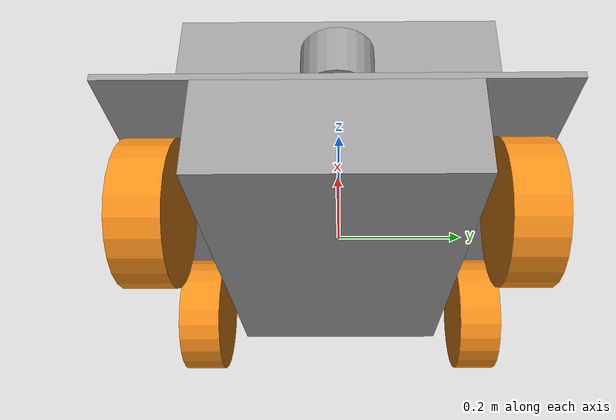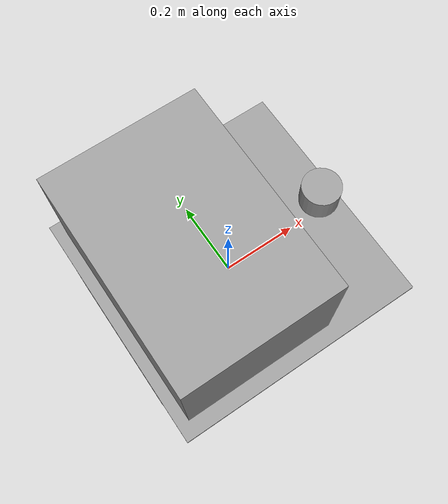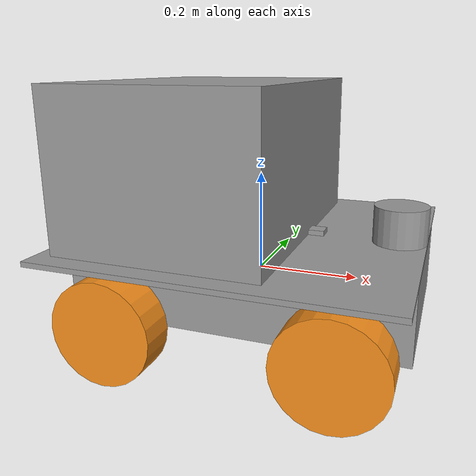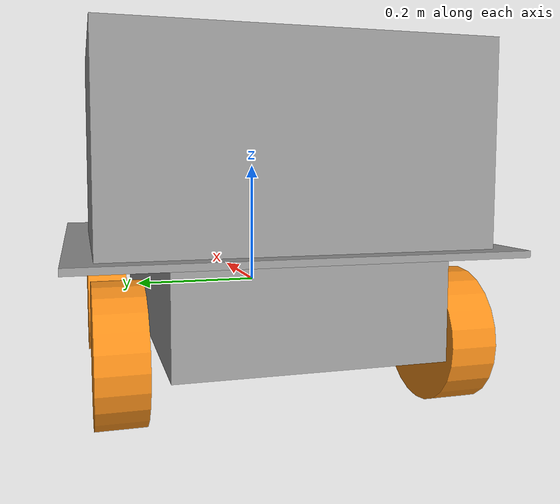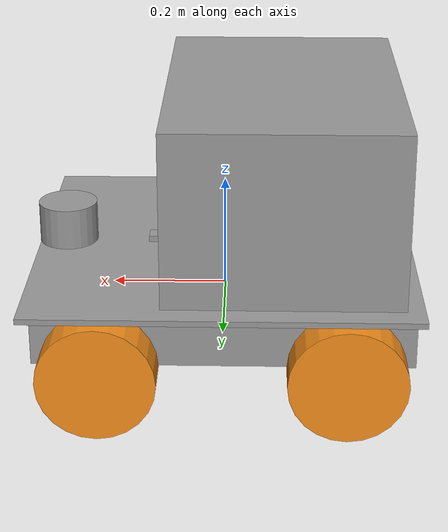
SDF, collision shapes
<?xml version='1.0'?>
<sdf version='1.7'>

  <model name='arco'>

    <link name='base_link'>
      <inertial>
        <mass>20</mass>
        <inertia>
          <ixx>0.273333</ixx>
          <ixy>0</ixy>
          <ixz>0</ixz>
          <iyy>0.758667</iyy>
          <iyz>0</iyz>
          <izz>0.966667</izz>
        </inertia>
        <pose>0 0 0 0 -0 0</pose>
      </inertial>
      <self_collide>1</self_collide>
      <enable_wind>0</enable_wind>
      <kinematic>0</kinematic>
      <pose>0 0 0 0 -0 0</pose>
      <gravity>1</gravity>
      <visual name='visual'>
        <geometry>
          <box>
            <size>0.66 0.38 0.14</size>
          </box>
        </geometry>
        <material>
          <script>
            <name>Gazebo/Grey</name>
            <uri>file://media/materials/scripts/gazebo.material</uri>
          </script>
          <shader type='pixel'>
            <normal_map>__default__</normal_map>
          </shader>
          <ambient>1 1 1 1</ambient>
          <diffuse>0.7 0.7 0.7 1</diffuse>
          <specular>0.01 0.01 0.01 1</specular>
          <emissive>0 0 0 1</emissive>
        </material>
        <pose>0 0 0 0 -0 0</pose>
        <transparency>0</transparency>
        <cast_shadows>1</cast_shadows>
      </visual>
      <collision name='collision'>
        <laser_retro>0</laser_retro>
        <max_contacts>10</max_contacts>
        <pose>0 0 0 0 -0 0</pose>
        <geometry>
          <box>
            <size>0.66 0.38 0.14</size>
          </box>
        </geometry>
        <surface>
          <friction>
            <ode>
              <mu>1</mu>
              <mu2>1</mu2>
              <fdir1>0 0 0</fdir1>
              <slip1>0</slip1>
              <slip2>0</slip2>
            </ode>
            <torsional>
              <coefficient>1</coefficient>
              <patch_radius>0</patch_radius>
              <surface_radius>0</surface_radius>
              <use_patch_radius>1</use_patch_radius>
              <ode>
                <slip>0</slip>
              </ode>
            </torsional>
          </friction>
          <bounce>
            <restitution_coefficient>0</restitution_coefficient>
            <threshold>1e+06</threshold>
          </bounce>
          <contact>
            <collide_without_contact>0</collide_without_contact>
            <collide_without_contact_bitmask>1</collide_without_contact_bitmask>
            <collide_bitmask>1</collide_bitmask>
            <ode>
              <soft_cfm>0</soft_cfm>
              <soft_erp>0.2</soft_erp>
              <kp>1e+13</kp>
              <kd>1</kd>
              <max_vel>0.01</max_vel>
              <min_depth>0</min_depth>
            </ode>
            <bullet>
              <split_impulse>1</split_impulse>
              <split_impulse_penetration_threshold>-0.01</split_impulse_penetration_threshold>
              <soft_cfm>0</soft_cfm>
              <soft_erp>0.2</soft_erp>
              <kp>1e+13</kp>
              <kd>1</kd>
            </bullet>
          </contact>
        </surface>
      </collision>

      <collision name='imu_collision'>
        <pose>0.12 0 0.09 0 -0 0</pose>
        <geometry>
          <box>
            <size>0.031 0.031 0.01</size>
          </box>
        </geometry>
        <surface>
          <contact>
            <ode/>
          </contact>
          <friction>
            <ode/>
          </friction>
        </surface>
      </collision>
      <collision name='os1_sensor_collision'>
        <pose>0.2795 0 0.12 0 -0 0</pose>
        <geometry>
          <cylinder>
            <length>0.0717</length>
            <radius>0.0516</radius>
          </cylinder>
        </geometry>
      </collision>
      <visual name='imu_visual'>
        <pose>0.12 0 0.09 0 -0 0</pose>
        <geometry>
          <mesh>
            <scale>0.001 0.001 0.001</scale>
            <uri>model://arco/meshes/razor_imu/razor_imu.stl</uri>
          </mesh>
        </geometry>
        <material>
          <script>
            <name>Gazebo/Red</name>
            <uri>file://media/materials/scripts/gazebo.material</uri>
          </script>
        </material>
      </visual>
      <visual name='os1_sensor_base_link_1'>
        <pose>0.2795 0 0.08 0 -0 0</pose>
        <geometry>
          <mesh>
            <scale>1 1 1</scale>
            <uri>model://arco/meshes/VLP16/VLP16_base_1.dae</uri>
          </mesh>
        </geometry>
      </visual>
      <visual name='os1_sensor_base_link_visual_2'>
        <pose>0.2795 0 0.08 -0 0</pose>
        <geometry>
          <mesh>
            <scale>1 1 1</scale>
            <uri>model://arco/meshes/VLP16/VLP16_base_2.dae</uri>
          </mesh>
        </geometry>
      </visual>
      <visual name='os1_sensor_visual_3'>
        <pose>0.2795 0 0.08 0 -0 0</pose>
        <geometry>
          <mesh>
            <scale>1 1 1</scale>
            <uri>model://arco/meshes/VLP16/VLP16_scan.dae</uri>
          </mesh>
        </geometry>
      </visual>

      <sensor name='imu_sensor' type='imu'>
        <always_on>1</always_on>
        <update_rate>50</update_rate>
        <visualize>1</visualize>
        <topic>__default_topic__</topic>
        <pose>0.12 0 0.1428 0 -0 0</pose>
      </sensor>
      <sensor name='os1_sensor-VLP16' type='ray'>
        <visualize>0</visualize>
        <update_rate>10</update_rate>
        <ray>
          <scan>
            <horizontal>
              <samples>1875</samples>
              <resolution>1</resolution>
              <min_angle>-3.14159</min_angle>
              <max_angle>3.14159</max_angle>
            </horizontal>
            <vertical>
              <samples>16</samples>
              <resolution>1</resolution>
              <min_angle>-0.261799</min_angle>
              <max_angle>0.261799</max_angle>
            </vertical>
          </scan>
          <range>
            <min>0.3</min>
            <max>40</max>
            <resolution>0.001</resolution>
          </range>
          <noise>
            <type>gaussian</type>
            <mean>0</mean>
            <stddev>0</stddev>
          </noise>
        </ray>
        <pose>0.2795 0 0.1791 0 -0 0</pose>
      </sensor>
    </link>
    <link name='front_right'>
      <inertial>
        <mass>0.5</mass>
        <inertia>
          <ixx>0.00104176</ixx>
          <ixy>0</ixy>
          <ixz>0</ixz>
          <iyy>0.00104176</iyy>
          <iyz>0</iyz>
          <izz>0.001225</izz>
        </inertia>
        <pose>0 0 0 0 -0 0</pose>
      </inertial>
      <pose>0.21 0.247 -0.06 1.57 0 0</pose>
      <gravity>1</gravity>
      <self_collide>1</self_collide>
      <kinematic>0</kinematic>
      <enable_wind>0</enable_wind>
      <visual name='visual'>
        <pose>0 0 0 1.57 -0 0</pose>
        <geometry>
          <mesh>
            <scale>0.002 0.002 0.002</scale>
            <uri>model://arco/meshes/mecanum/mecanum_wheel_left.STL</uri>
          </mesh>
        </geometry>
        <material>
          <lighting>1</lighting>
          <script>
            <name>Gazebo/Orange</name>
            <uri>file://media/materials/scripts/gazebo.material</uri>
          </script>
          <shader type='pixel'>
            <normal_map>__default__</normal_map>
          </shader>
        </material>
        <transparency>0</transparency>
        <cast_shadows>1</cast_shadows>
      </visual>
      <collision name='collision'>
        <laser_retro>0</laser_retro>
        <max_contacts>10</max_contacts>
        <pose>0 0 0 0 -0 0</pose>
        <geometry>
          <cylinder>
            <radius>0.1015</radius>
            <length>0.07</length>
          </cylinder>
        </geometry>
        <surface>
          <friction>
            <ode>
              <mu>1</mu>
              <mu2>1</mu2>
              <fdir1>0 0 0</fdir1>
              <slip1>0</slip1>
              <slip2>0</slip2>
            </ode>
            <torsional>
              <coefficient>1</coefficient>
              <patch_radius>0</patch_radius>
              <surface_radius>0</surface_radius>
              <use_patch_radius>1</use_patch_radius>
              <ode>
                <slip>0</slip>
              </ode>
            </torsional>
          </friction>
          <bounce>
            <restitution_coefficient>0</restitution_coefficient>
            <threshold>1e+06</threshold>
          </bounce>
          <contact>
            <collide_without_contact>0</collide_without_contact>
            <collide_without_contact_bitmask>1</collide_without_contact_bitmask>
            <collide_bitmask>1</collide_bitmask>
            <ode>
              <soft_cfm>0</soft_cfm>
              <soft_erp>0.2</soft_erp>
              <kp>1e+13</kp>
              <kd>1</kd>
              <max_vel>0.01</max_vel>
              <min_depth>0</min_depth>
            </ode>
            <bullet>
              <split_impulse>1</split_impulse>
              <split_impulse_penetration_threshold>-0.01</split_impulse_penetration_threshold>
              <soft_cfm>0</soft_cfm>
              <soft_erp>0.2</soft_erp>
              <kp>1e+13</kp>
              <kd>1</kd>
            </bullet>
          </contact>
        </surface>
      </collision>
    </link>
    <link name='rear_right'>
      <inertial>
        <mass>0.5</mass>
        <inertia>
          <ixx>0.00104176</ixx>
          <ixy>0</ixy>
          <ixz>0</ixz>
          <iyy>0.00104176</iyy>
          <iyz>0</iyz>
          <izz>0.001225</izz>
        </inertia>
        <pose>0 0 0 0 -0 0</pose>
      </inertial>
      <pose>-0.21 0.247 -0.06 1.57 -0 0</pose>
      <gravity>1</gravity>
      <self_collide>1</self_collide>
      <kinematic>0</kinematic>
      <enable_wind>0</enable_wind>
      <visual name='visual'>
        <pose>0 0 0 1.57 -0 0</pose>
        <geometry>
         <mesh>
            <scale>0.002 0.002 0.002</scale>
            <uri>model://arco/meshes/mecanum/mecanum_wheel_left.STL</uri>
          </mesh>
        </geometry>
        <material>
          <lighting>1</lighting>
          <script>
            <name>Gazebo/Orange</name>
            <uri>file://media/materials/scripts/gazebo.material</uri>
          </script>
          <shader type='pixel'>
            <normal_map>__default__</normal_map>
          </shader>
        </material>
        <transparency>0</transparency>
        <cast_shadows>1</cast_shadows>
      </visual>
      <collision name='collision'>
        <laser_retro>0</laser_retro>
        <max_contacts>10</max_contacts>
        <pose>0 0 0 0 -0 0</pose>
        <geometry>
          <cylinder>
            <radius>0.1015</radius>
            <length>0.07</length>
          </cylinder>
        </geometry>
        <surface>
          <friction>
            <ode>
              <mu>1</mu>
              <mu2>1</mu2>
              <fdir1>0 0 0</fdir1>
              <slip1>0</slip1>
              <slip2>0</slip2>
            </ode>
            <torsional>
              <coefficient>1</coefficient>
              <patch_radius>0</patch_radius>
              <surface_radius>0</surface_radius>
              <use_patch_radius>1</use_patch_radius>
              <ode>
                <slip>0</slip>
              </ode>
            </torsional>
          </friction>
          <bounce>
            <restitution_coefficient>0</restitution_coefficient>
            <threshold>1e+06</threshold>
          </bounce>
          <contact>
            <collide_without_contact>0</collide_without_contact>
            <collide_without_contact_bitmask>1</collide_without_contact_bitmask>
            <collide_bitmask>1</collide_bitmask>
            <ode>
              <soft_cfm>0</soft_cfm>
              <soft_erp>0.2</soft_erp>
              <kp>1e+13</kp>
              <kd>1</kd>
              <max_vel>0.01</max_vel>
              <min_depth>0</min_depth>
            </ode>
            <bullet>
              <split_impulse>1</split_impulse>
              <split_impulse_penetration_threshold>-0.01</split_impulse_penetration_threshold>
              <soft_cfm>0</soft_cfm>
              <soft_erp>0.2</soft_erp>
              <kp>1e+13</kp>
              <kd>1</kd>
            </bullet>
          </contact>
        </surface>
      </collision>
    </link>
    <link name='front_left'>
      <inertial>
        <mass>0.5</mass>
        <inertia>
          <ixx>0.00104176</ixx>
          <ixy>0</ixy>
          <ixz>0</ixz>
          <iyy>0.00104176</iyy>
          <iyz>0</iyz>
          <izz>0.001225</izz>
        </inertia>
        <pose>0 0 0 0 -0 0</pose>
      </inertial>
      <pose>0.21 -0.247 -0.06 1.57 -0 0</pose>
      <gravity>1</gravity>
      <self_collide>1</self_collide>
      <kinematic>0</kinematic>
      <enable_wind>0</enable_wind>
      <visual name='visual'>
        <pose>0 0 0 1.57 -0 0</pose>
        <geometry>
          <mesh>
            <scale>0.002 0.002 0.002</scale>
            <uri>model://arco/meshes/mecanum/mecanum_wheel_left.STL</uri>
          </mesh>
        </geometry>
        <material>
          <lighting>1</lighting>
          <script>
            <name>Gazebo/Orange</name>
            <uri>file://media/materials/scripts/gazebo.material</uri>
          </script>
          <shader type='pixel'>
            <normal_map>__default__</normal_map>
          </shader>
        </material>
        <transparency>0</transparency>
        <cast_shadows>1</cast_shadows>
      </visual>
      <collision name='collision'>
        <laser_retro>0</laser_retro>
        <max_contacts>10</max_contacts>
        <pose>0 0 0 0 -0 0</pose>
        <geometry>
          <cylinder>
            <radius>0.1015</radius>
            <length>0.07</length>
          </cylinder>
        </geometry>
        <surface>
          <friction>
            <ode>
              <mu>1</mu>
              <mu2>1</mu2>
              <fdir1>0 0 0</fdir1>
              <slip1>0</slip1>
              <slip2>0</slip2>
            </ode>
            <torsional>
              <coefficient>1</coefficient>
              <patch_radius>0</patch_radius>
              <surface_radius>0</surface_radius>
              <use_patch_radius>1</use_patch_radius>
              <ode>
                <slip>0</slip>
              </ode>
            </torsional>
          </friction>
          <bounce>
            <restitution_coefficient>0</restitution_coefficient>
            <threshold>1e+06</threshold>
          </bounce>
          <contact>
            <collide_without_contact>0</collide_without_contact>
            <collide_without_contact_bitmask>1</collide_without_contact_bitmask>
            <collide_bitmask>1</collide_bitmask>
            <ode>
              <soft_cfm>0</soft_cfm>
              <soft_erp>0.2</soft_erp>
              <kp>1e+13</kp>
              <kd>1</kd>
              <max_vel>0.01</max_vel>
              <min_depth>0</min_depth>
            </ode>
            <bullet>
              <split_impulse>1</split_impulse>
              <split_impulse_penetration_threshold>-0.01</split_impulse_penetration_threshold>
              <soft_cfm>0</soft_cfm>
              <soft_erp>0.2</soft_erp>
              <kp>1e+13</kp>
              <kd>1</kd>
            </bullet>
          </contact>
        </surface>
      </collision>
    </link>
    <link name='rear_left'>
      <inertial>
        <mass>0.5</mass>
        <inertia>
          <ixx>0.00104176</ixx>
          <ixy>0</ixy>
          <ixz>0</ixz>
          <iyy>0.00104176</iyy>
          <iyz>0</iyz>
          <izz>0.001225</izz>
        </inertia>
        <pose>0 0 0 1.57 -0 0</pose>
      </inertial>
      <pose>-0.21 -0.247 -0.06 1.57 -0 0</pose>
      <gravity>1</gravity>
      <self_collide>1</self_collide>
      <kinematic>0</kinematic>
      <enable_wind>0</enable_wind>
      <visual name='visual'>
        <pose>0 0 0 1.57 -0 0</pose>
        <geometry>
          <mesh>
            <scale>0.002 0.002 0.002</scale>
            <uri>model://arco/meshes/mecanum/mecanum_wheel_left.STL</uri>
          </mesh>
        </geometry>
        <material>
          <lighting>1</lighting>
          <script>
            <name>Gazebo/Orange</name>
            <uri>file://media/materials/scripts/gazebo.material</uri>
          </script>
          <shader type='pixel'>
            <normal_map>__default__</normal_map>
          </shader>
        </material>
        <transparency>0</transparency>
        <cast_shadows>1</cast_shadows>
      </visual>
      <collision name='collision'>
        <laser_retro>0</laser_retro>
        <max_contacts>10</max_contacts>
        <pose>0 0 0 0 -0 0</pose>
        <geometry>
          <cylinder>
            <radius>0.1015</radius>
            <length>0.07</length>
          </cylinder>
        </geometry>
        <surface>
          <friction>
            <ode>
              <mu>1</mu>
              <mu2>1</mu2>
              <fdir1>0 0 0</fdir1>
              <slip1>0</slip1>
              <slip2>0</slip2>
            </ode>
            <torsional>
              <coefficient>1</coefficient>
              <patch_radius>0</patch_radius>
              <surface_radius>0</surface_radius>
              <use_patch_radius>1</use_patch_radius>
              <ode>
                <slip>0</slip>
              </ode>
            </torsional>
          </friction>
          <bounce>
            <restitution_coefficient>0</restitution_coefficient>
            <threshold>1e+06</threshold>
          </bounce>
          <contact>
            <collide_without_contact>0</collide_without_contact>
            <collide_without_contact_bitmask>1</collide_without_contact_bitmask>
            <collide_bitmask>1</collide_bitmask>
            <ode>
              <soft_cfm>0</soft_cfm>
              <soft_erp>0.2</soft_erp>
              <kp>1e+13</kp>
              <kd>1</kd>
              <max_vel>0.01</max_vel>
              <min_depth>0</min_depth>
            </ode>
            <bullet>
              <split_impulse>1</split_impulse>
              <split_impulse_penetration_threshold>-0.01</split_impulse_penetration_threshold>
              <soft_cfm>0</soft_cfm>
              <soft_erp>0.2</soft_erp>
              <kp>1e+13</kp>
              <kd>1</kd>
            </bullet>
          </contact>
        </surface>
      </collision>
    </link>
    <link name='base_cover'>
      <inertial>
        <mass>1</mass>
        <inertia>
          <ixx>0.0341417</ixx>
          <ixy>0</ixy>
          <ixz>0</ixz>
          <iyy>0.0363083</iyy>
          <iyz>0</iyz>
          <izz>0.0704333</izz>
        </inertia>
        <pose>0 0 0 0 -0 0</pose>
      </inertial>
      <self_collide>1</self_collide>
      <enable_wind>0</enable_wind>
      <kinematic>0</kinematic>
      <pose>-0 0 0.075 0 -0 0</pose>
      <gravity>1</gravity>
      <visual name='visual'>
        <geometry>
          <box>
            <size>0.66 0.64 0.01</size>
          </box>
        </geometry>
        <material>
          <script>
            <name>Gazebo/Gray</name>
            <uri>file://media/materials/scripts/gazebo.material</uri>
          </script>
          <shader type='pixel'>
            <normal_map>__default__</normal_map>
          </shader>
          <ambient>1 1 1 1</ambient>
          <diffuse>0.7 0.7 0.7 1</diffuse>
          <specular>0.01 0.01 0.01 1</specular>
          <emissive>0 0 0 1</emissive>
        </material>
        <pose>0 0 0 0 -0 0</pose>
        <transparency>0</transparency>
        <cast_shadows>1</cast_shadows>
      </visual>
      <collision name='collision'>
        <laser_retro>0</laser_retro>
        <max_contacts>10</max_contacts>
        <pose>0 0 0 0 -0 0</pose>
        <geometry>
          <box>
            <size>0.66 0.64 0.01</size>
          </box>
        </geometry>
        <surface>
          <friction>
            <ode>
              <mu>1</mu>
              <mu2>1</mu2>
              <fdir1>0 0 0</fdir1>
              <slip1>0</slip1>
              <slip2>0</slip2>
            </ode>
            <torsional>
              <coefficient>1</coefficient>
              <patch_radius>0</patch_radius>
              <surface_radius>0</surface_radius>
              <use_patch_radius>1</use_patch_radius>
              <ode>
                <slip>0</slip>
              </ode>
            </torsional>
          </friction>
          <bounce>
            <restitution_coefficient>0</restitution_coefficient>
            <threshold>1e+06</threshold>
          </bounce>
          <contact>
            <collide_without_contact>0</collide_without_contact>
            <collide_without_contact_bitmask>1</collide_without_contact_bitmask>
            <collide_bitmask>1</collide_bitmask>
            <ode>
              <soft_cfm>0</soft_cfm>
              <soft_erp>0.2</soft_erp>
              <kp>1e+13</kp>
              <kd>1</kd>
              <max_vel>0.01</max_vel>
              <min_depth>0</min_depth>
            </ode>
            <bullet>
              <split_impulse>1</split_impulse>
              <split_impulse_penetration_threshold>-0.01</split_impulse_penetration_threshold>
              <soft_cfm>0</soft_cfm>
              <soft_erp>0.2</soft_erp>
              <kp>1e+13</kp>
              <kd>1</kd>
            </bullet>
          </contact>
        </surface>
      </collision>
    </link>
    <link name='base_platform'>
      <inertial>
        <mass>10</mass>
        <inertia>
          <ixx>0.336333</ixx>
          <ixy>0</ixy>
          <ixz>0</ixz>
          <iyy>0.208333</iyy>
          <iyz>0</iyz>
          <izz>0.394667</izz>
        </inertia>
        <pose>0 0 0 0 -0 0</pose>
      </inertial>
      <self_collide>1</self_collide>
      <enable_wind>0</enable_wind>
      <kinematic>0</kinematic>
      <pose>-0.1 -0 0.23 0 -0 0</pose>
      <gravity>1</gravity>
      <visual name='visual'>
        <geometry>
          <box>
            <size>0.4 0.56 0.3</size>
          </box>
        </geometry>
        <material>
          <script>
            <name>Gazebo/Gray</name>
            <uri>file://media/materials/scripts/gazebo.material</uri>
          </script>
          <shader type='pixel'>
            <normal_map>__default__</normal_map>
          </shader>
          <ambient>0.5 0.5 0.5 1</ambient>
          <diffuse>0.7 0.7 0.7 1</diffuse>
          <specular>0.01 0.01 0.01 1</specular>
          <emissive>0 0 0 1</emissive>
        </material>
        <pose>0 0 0 0 -0 0</pose>
        <transparency>0</transparency>
        <cast_shadows>1</cast_shadows>
      </visual>
      <collision name='collision'>
        <laser_retro>0</laser_retro>
        <max_contacts>10</max_contacts>
        <pose>0 0 0 0 -0 0</pose>
        <geometry>
          <box>
            <size>0.4 0.56 0.3</size>
          </box>
        </geometry>
        <surface>
          <friction>
            <ode>
              <mu>1</mu>
              <mu2>1</mu2>
              <fdir1>0 0 0</fdir1>
              <slip1>0</slip1>
              <slip2>0</slip2>
            </ode>
            <torsional>
              <coefficient>1</coefficient>
              <patch_radius>0</patch_radius>
              <surface_radius>0</surface_radius>
              <use_patch_radius>1</use_patch_radius>
              <ode>
                <slip>0</slip>
              </ode>
            </torsional>
          </friction>
          <bounce>
            <restitution_coefficient>0</restitution_coefficient>
            <threshold>1e+06</threshold>
          </bounce>
          <contact>
            <collide_without_contact>0</collide_without_contact>
            <collide_without_contact_bitmask>1</collide_without_contact_bitmask>
            <collide_bitmask>1</collide_bitmask>
            <ode>
              <soft_cfm>0</soft_cfm>
              <soft_erp>0.2</soft_erp>
              <kp>1e+13</kp>
              <kd>1</kd>
              <max_vel>0.01</max_vel>
              <min_depth>0</min_depth>
            </ode>
            <bullet>
              <split_impulse>1</split_impulse>
              <split_impulse_penetration_threshold>-0.01</split_impulse_penetration_threshold>
              <soft_cfm>0</soft_cfm>
              <soft_erp>0.2</soft_erp>
              <kp>1e+13</kp>
              <kd>1</kd>
            </bullet>
          </contact>
        </surface>
      </collision>
    </link>
    <joint name='link_JOINT_2' type='fixed'>
      <parent>base_link</parent>
      <child>base_cover</child>
      <pose>0 0 0 0 -0 0</pose>
      <physics>
        <ode>
          <limit>
            <cfm>0</cfm>
            <erp>0.2</erp>
          </limit>
          <suspension>
            <cfm>0</cfm>
            <erp>0.2</erp>
          </suspension>
        </ode>
      </physics>
    </joint>
    <joint name='link_JOINT_3' type='fixed'>
      <parent>base_cover</parent>
      <child>base_platform</child>
      <pose>0 0 0 0 -0 0</pose>
      <physics>
        <ode>
          <limit>
            <cfm>0</cfm>
            <erp>0.2</erp>
          </limit>
          <suspension>
            <cfm>0</cfm>
            <erp>0.2</erp>
          </suspension>
        </ode>
      </physics>
    </joint>
    <joint name='link_JOINT_4' type='revolute'>
      <parent>base_link</parent>
      <child>front_right</child>
      <pose>0 0 0.035 0 -0 0</pose>
      <axis>
        <xyz>0 0 1</xyz>
        <limit>
          <lower>-1.79769e+308</lower>
          <upper>1.79769e+308</upper>
          <effort>-1</effort>
          <velocity>-1</velocity>
        </limit>
        <dynamics>
          <spring_reference>0</spring_reference>
          <spring_stiffness>0</spring_stiffness>
          <damping>0</damping>
        </dynamics>
      </axis>
      <physics>
        <ode>
          <limit>
            <cfm>0</cfm>
            <erp>0.2</erp>
          </limit>
          <suspension>
            <cfm>0</cfm>
            <erp>0.2</erp>
          </suspension>
        </ode>
      </physics>
    </joint>
    <joint name='link_JOINT_5' type='revolute'>
      <parent>base_link</parent>
      <child>rear_right</child>
      <pose>0 0 0.035 0 -0 0</pose>
      <axis>
        <xyz>0 0 1</xyz>
        <limit>
          <lower>-1.79769e+308</lower>
          <upper>1.79769e+308</upper>
          <effort>-1</effort>
          <velocity>-1</velocity>
        </limit>
        <dynamics>
          <spring_reference>0</spring_reference>
          <spring_stiffness>0</spring_stiffness>
          <damping>0</damping>
        </dynamics>
      </axis>
      <physics>
        <ode>
          <limit>
            <cfm>0</cfm>
            <erp>0.2</erp>
          </limit>
          <suspension>
            <cfm>0</cfm>
            <erp>0.2</erp>
          </suspension>
        </ode>
      </physics>
    </joint>
    <joint name='link_JOINT_6' type='revolute'>
      <parent>base_link</parent>
      <child>front_left</child>
      <pose>0 0 -0.035 0 -0 0</pose>
      <axis>
        <xyz>0 0 1</xyz>
        <limit>
          <lower>-1.79769e+308</lower>
          <upper>1.79769e+308</upper>
          <effort>-1</effort>
          <velocity>-1</velocity>
        </limit>
        <dynamics>
          <spring_reference>0</spring_reference>
          <spring_stiffness>0</spring_stiffness>
          <damping>0</damping>
        </dynamics>
      </axis>
      <physics>
        <ode>
          <limit>
            <cfm>0</cfm>
            <erp>0.2</erp>
          </limit>
          <suspension>
            <cfm>0</cfm>
            <erp>0.2</erp>
          </suspension>
        </ode>
      </physics>
    </joint>
    <joint name='link_JOINT_7' type='revolute'>
      <parent>base_link</parent>
      <child>rear_left</child>
      <pose>0 0 -0.035 0 -0 0</pose>
      <axis>
        <xyz>0 0 1</xyz>
        <limit>
          <lower>-1.79769e+308</lower>
          <upper>1.79769e+308</upper>
          <effort>-1</effort>
          <velocity>-1</velocity>
        </limit>
        <dynamics>
          <spring_reference>0</spring_reference>
          <spring_stiffness>0</spring_stiffness>
          <damping>0</damping>
        </dynamics>
      </axis>
      <physics>
        <ode>
          <limit>
            <cfm>0</cfm>
            <erp>0.2</erp>
          </limit>
          <suspension>
            <cfm>0</cfm>
            <erp>0.2</erp>
          </suspension>
        </ode>
      </physics>
    </joint>

    <static>0</static>
    <allow_auto_disable>1</allow_auto_disable>

  </model>
</sdf>
